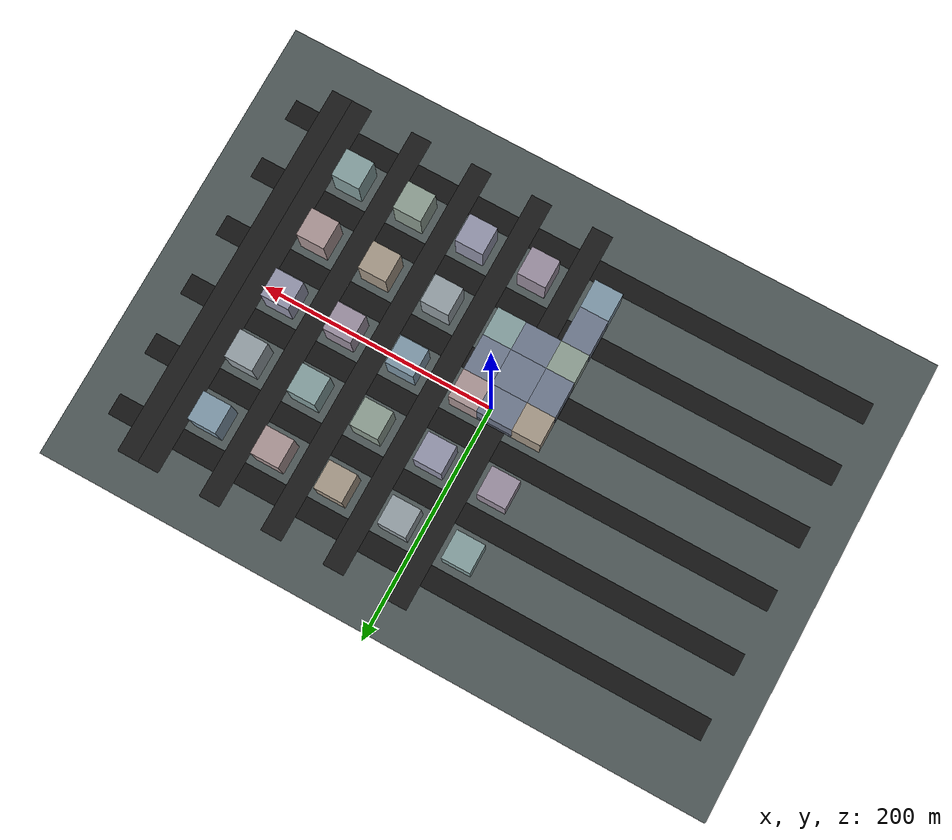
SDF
<sdf version="1.9">
 <world name="generated_city">
  <model name="ground">
   <static>true</static>
   <pose>0.000 0.000 -0.050 0 0 0</pose>
   <link name="link">
    <collision name="collision"><geometry><box><size>570.000 390.000 0.100</size></box></geometry></collision>
    <visual name="visual">
     <geometry><box><size>570.000 390.000 0.100</size></box></geometry>
     <material><diffuse>0.3 0.34 0.34 1.0</diffuse></material>
    </visual>
   </link>
  </model>
  <model name="street_01">
   <static>true</static>
   <pose>0.000 -135.000 0.040 0 0 0</pose>
   <link name="link">
    <visual name="visual">
     <geometry><box><size>510.000 18.000 0.040</size></box></geometry>
     <material><diffuse>0.08 0.08 0.08 1.0</diffuse></material>
    </visual>
   </link>
  </model>
  <model name="street_02">
   <static>true</static>
   <pose>0.000 -81.000 0.040 0 0 0</pose>
   <link name="link">
    <visual name="visual">
     <geometry><box><size>510.000 18.000 0.040</size></box></geometry>
     <material><diffuse>0.08 0.08 0.08 1.0</diffuse></material>
    </visual>
   </link>
  </model>
  <model name="street_03">
   <static>true</static>
   <pose>0.000 -27.000 0.040 0 0 0</pose>
   <link name="link">
    <visual name="visual">
     <geometry><box><size>510.000 18.000 0.040</size></box></geometry>
     <material><diffuse>0.08 0.08 0.08 1.0</diffuse></material>
    </visual>
   </link>
  </model>
  <model name="street_04">
   <static>true</static>
   <pose>0.000 27.000 0.040 0 0 0</pose>
   <link name="link">
    <visual name="visual">
     <geometry><box><size>510.000 18.000 0.040</size></box></geometry>
     <material><diffuse>0.08 0.08 0.08 1.0</diffuse></material>
    </visual>
   </link>
  </model>
  <model name="street_05">
   <static>true</static>
   <pose>0.000 81.000 0.040 0 0 0</pose>
   <link name="link">
    <visual name="visual">
     <geometry><box><size>510.000 18.000 0.040</size></box></geometry>
     <material><diffuse>0.08 0.08 0.08 1.0</diffuse></material>
    </visual>
   </link>
  </model>
  <model name="street_06">
   <static>true</static>
   <pose>0.000 135.000 0.040 0 0 0</pose>
   <link name="link">
    <visual name="visual">
     <geometry><box><size>510.000 18.000 0.040</size></box></geometry>
     <material><diffuse>0.08 0.08 0.08 1.0</diffuse></material>
    </visual>
   </link>
  </model>
  <model name="avenue_05">
   <static>true</static>
   <pose>-9.000 0.000 0.050 0 0 0</pose>
   <link name="link">
    <visual name="visual">
     <geometry><box><size>18.000 330.000 0.040</size></box></geometry>
     <material><diffuse>0.1 0.1 0.1 1.0</diffuse></material>
    </visual>
   </link>
  </model>
  <model name="avenue_06">
   <static>true</static>
   <pose>45.000 0.000 0.050 0 0 0</pose>
   <link name="link">
    <visual name="visual">
     <geometry><box><size>18.000 330.000 0.040</size></box></geometry>
     <material><diffuse>0.1 0.1 0.1 1.0</diffuse></material>
    </visual>
   </link>
  </model>
  <model name="avenue_07">
   <static>true</static>
   <pose>99.000 0.000 0.050 0 0 0</pose>
   <link name="link">
    <visual name="visual">
     <geometry><box><size>18.000 330.000 0.040</size></box></geometry>
     <material><diffuse>0.1 0.1 0.1 1.0</diffuse></material>
    </visual>
   </link>
  </model>
  <model name="avenue_08">
   <static>true</static>
   <pose>153.000 0.000 0.050 0 0 0</pose>
   <link name="link">
    <visual name="visual">
     <geometry><box><size>18.000 330.000 0.040</size></box></geometry>
     <material><diffuse>0.1 0.1 0.1 1.0</diffuse></material>
    </visual>
   </link>
  </model>
  <model name="avenue_09">
   <static>true</static>
   <pose>207.000 0.000 0.050 0 0 0</pose>
   <link name="link">
    <visual name="visual">
     <geometry><box><size>18.000 330.000 0.040</size></box></geometry>
     <material><diffuse>0.1 0.1 0.1 1.0</diffuse></material>
    </visual>
   </link>
  </model>
  <model name="avenue_10">
   <static>true</static>
   <pose>225.000 0.000 0.050 0 0 0</pose>
   <link name="link">
    <visual name="visual">
     <geometry><box><size>18.000 330.000 0.040</size></box></geometry>
     <material><diffuse>0.1 0.1 0.1 1.0</diffuse></material>
    </visual>
   </link>
  </model>
  <model name="building_004">
   <static>true</static>
   <pose>-36.000 -108.000 16.000 0 0 0</pose>
   <link name="link">
    <collision name="collision"><geometry><box><size>24.000 24.000 32.000</size></box></geometry></collision>
    <visual name="visual">
     <geometry><box><size>24.000 24.000 32.000</size></box></geometry>
     <material><diffuse>0.49411764705882355 0.592156862745098 0.6588235294117647 1.0</diffuse></material>
    </visual>
   </link>
  </model>
  <model name="building_005">
   <static>true</static>
   <pose>18.000 -108.000 16.000 0 0 0</pose>
   <link name="link">
    <collision name="collision"><geometry><box><size>24.000 24.000 32.000</size></box></geometry></collision>
    <visual name="visual">
     <geometry><box><size>24.000 24.000 32.000</size></box></geometry>
     <material><diffuse>0.6039215686274509 0.5568627450980392 0.6235294117647059 1.0</diffuse></material>
    </visual>
   </link>
  </model>
  <model name="building_006">
   <static>true</static>
   <pose>72.000 -108.000 16.000 0 0 0</pose>
   <link name="link">
    <collision name="collision"><geometry><box><size>24.000 24.000 32.000</size></box></geometry></collision>
    <visual name="visual">
     <geometry><box><size>24.000 24.000 32.000</size></box></geometry>
     <material><diffuse>0.5725490196078431 0.5803921568627451 0.6666666666666666 1.0</diffuse></material>
    </visual>
   </link>
  </model>
  <model name="building_007">
   <static>true</static>
   <pose>126.000 -108.000 16.000 0 0 0</pose>
   <link name="link">
    <collision name="collision"><geometry><box><size>24.000 24.000 32.000</size></box></geometry></collision>
    <visual name="visual">
     <geometry><box><size>24.000 24.000 32.000</size></box></geometry>
     <material><diffuse>0.5490196078431373 0.615686274509804 0.5686274509803921 1.0</diffuse></material>
    </visual>
   </link>
  </model>
  <model name="building_008">
   <static>true</static>
   <pose>180.000 -108.000 16.000 0 0 0</pose>
   <link name="link">
    <collision name="collision"><geometry><box><size>24.000 24.000 32.000</size></box></geometry></collision>
    <visual name="visual">
     <geometry><box><size>24.000 24.000 32.000</size></box></geometry>
     <material><diffuse>0.5176470588235295 0.6196078431372549 0.6196078431372549 1.0</diffuse></material>
    </visual>
   </link>
  </model>
  <model name="building_012">
   <static>true</static>
   <pose>-36.000 -54.000 16.000 0 0 0</pose>
   <link name="link">
    <collision name="collision"><geometry><box><size>24.000 24.000 32.000</size></box></geometry></collision>
    <visual name="visual">
     <geometry><box><size>24.000 24.000 32.000</size></box></geometry>
     <material><diffuse>0.5490196078431373 0.615686274509804 0.5686274509803921 1.0</diffuse></material>
    </visual>
   </link>
  </model>
  <model name="building_013">
   <static>true</static>
   <pose>18.000 -54.000 16.000 0 0 0</pose>
   <link name="link">
    <collision name="collision"><geometry><box><size>24.000 24.000 32.000</size></box></geometry></collision>
    <visual name="visual">
     <geometry><box><size>24.000 24.000 32.000</size></box></geometry>
     <material><diffuse>0.5176470588235295 0.6196078431372549 0.6196078431372549 1.0</diffuse></material>
    </visual>
   </link>
  </model>
  <model name="building_014">
   <static>true</static>
   <pose>72.000 -54.000 16.000 0 0 0</pose>
   <link name="link">
    <collision name="collision"><geometry><box><size>24.000 24.000 32.000</size></box></geometry></collision>
    <visual name="visual">
     <geometry><box><size>24.000 24.000 32.000</size></box></geometry>
     <material><diffuse>0.5803921568627451 0.6196078431372549 0.6431372549019608 1.0</diffuse></material>
    </visual>
   </link>
  </model>
  <model name="building_015">
   <static>true</static>
   <pose>126.000 -54.000 16.000 0 0 0</pose>
   <link name="link">
    <collision name="collision"><geometry><box><size>24.000 24.000 32.000</size></box></geometry></collision>
    <visual name="visual">
     <geometry><box><size>24.000 24.000 32.000</size></box></geometry>
     <material><diffuse>0.6431372549019608 0.592156862745098 0.5254901960784314 1.0</diffuse></material>
    </visual>
   </link>
  </model>
  <model name="building_016">
   <static>true</static>
   <pose>180.000 -54.000 16.000 0 0 0</pose>
   <link name="link">
    <collision name="collision"><geometry><box><size>24.000 24.000 32.000</size></box></geometry></collision>
    <visual name="visual">
     <geometry><box><size>24.000 24.000 32.000</size></box></geometry>
     <material><diffuse>0.6627450980392157 0.5803921568627451 0.5803921568627451 1.0</diffuse></material>
    </visual>
   </link>
  </model>
  <model name="building_020">
   <static>true</static>
   <pose>-36.000 0.000 16.000 0 0 0</pose>
   <link name="link">
    <collision name="collision"><geometry><box><size>24.000 24.000 32.000</size></box></geometry></collision>
    <visual name="visual">
     <geometry><box><size>24.000 24.000 32.000</size></box></geometry>
     <material><diffuse>0.6431372549019608 0.592156862745098 0.5254901960784314 1.0</diffuse></material>
    </visual>
   </link>
  </model>
  <model name="building_021">
   <static>true</static>
   <pose>18.000 0.000 16.000 0 0 0</pose>
   <link name="link">
    <collision name="collision"><geometry><box><size>24.000 24.000 32.000</size></box></geometry></collision>
    <visual name="visual">
     <geometry><box><size>24.000 24.000 32.000</size></box></geometry>
     <material><diffuse>0.6627450980392157 0.5803921568627451 0.5803921568627451 1.0</diffuse></material>
    </visual>
   </link>
  </model>
  <model name="building_022">
   <static>true</static>
   <pose>72.000 0.000 16.000 0 0 0</pose>
   <link name="link">
    <collision name="collision"><geometry><box><size>24.000 24.000 32.000</size></box></geometry></collision>
    <visual name="visual">
     <geometry><box><size>24.000 24.000 32.000</size></box></geometry>
     <material><diffuse>0.49411764705882355 0.592156862745098 0.6588235294117647 1.0</diffuse></material>
    </visual>
   </link>
  </model>
  <model name="building_023">
   <static>true</static>
   <pose>126.000 0.000 16.000 0 0 0</pose>
   <link name="link">
    <collision name="collision"><geometry><box><size>24.000 24.000 32.000</size></box></geometry></collision>
    <visual name="visual">
     <geometry><box><size>24.000 24.000 32.000</size></box></geometry>
     <material><diffuse>0.6039215686274509 0.5568627450980392 0.6235294117647059 1.0</diffuse></material>
    </visual>
   </link>
  </model>
  <model name="building_024">
   <static>true</static>
   <pose>180.000 0.000 16.000 0 0 0</pose>
   <link name="link">
    <collision name="collision"><geometry><box><size>24.000 24.000 32.000</size></box></geometry></collision>
    <visual name="visual">
     <geometry><box><size>24.000 24.000 32.000</size></box></geometry>
     <material><diffuse>0.5725490196078431 0.5803921568627451 0.6666666666666666 1.0</diffuse></material>
    </visual>
   </link>
  </model>
  <model name="building_028">
   <static>true</static>
   <pose>-36.000 54.000 16.000 0 0 0</pose>
   <link name="link">
    <collision name="collision"><geometry><box><size>24.000 24.000 32.000</size></box></geometry></collision>
    <visual name="visual">
     <geometry><box><size>24.000 24.000 32.000</size></box></geometry>
     <material><diffuse>0.6039215686274509 0.5568627450980392 0.6235294117647059 1.0</diffuse></material>
    </visual>
   </link>
  </model>
  <model name="building_029">
   <static>true</static>
   <pose>18.000 54.000 16.000 0 0 0</pose>
   <link name="link">
    <collision name="collision"><geometry><box><size>24.000 24.000 32.000</size></box></geometry></collision>
    <visual name="visual">
     <geometry><box><size>24.000 24.000 32.000</size></box></geometry>
     <material><diffuse>0.5725490196078431 0.5803921568627451 0.6666666666666666 1.0</diffuse></material>
    </visual>
   </link>
  </model>
  <model name="building_030">
   <static>true</static>
   <pose>72.000 54.000 16.000 0 0 0</pose>
   <link name="link">
    <collision name="collision"><geometry><box><size>24.000 24.000 32.000</size></box></geometry></collision>
    <visual name="visual">
     <geometry><box><size>24.000 24.000 32.000</size></box></geometry>
     <material><diffuse>0.5490196078431373 0.615686274509804 0.5686274509803921 1.0</diffuse></material>
    </visual>
   </link>
  </model>
  <model name="building_031">
   <static>true</static>
   <pose>126.000 54.000 16.000 0 0 0</pose>
   <link name="link">
    <collision name="collision"><geometry><box><size>24.000 24.000 32.000</size></box></geometry></collision>
    <visual name="visual">
     <geometry><box><size>24.000 24.000 32.000</size></box></geometry>
     <material><diffuse>0.5176470588235295 0.6196078431372549 0.6196078431372549 1.0</diffuse></material>
    </visual>
   </link>
  </model>
  <model name="building_032">
   <static>true</static>
   <pose>180.000 54.000 16.000 0 0 0</pose>
   <link name="link">
    <collision name="collision"><geometry><box><size>24.000 24.000 32.000</size></box></geometry></collision>
    <visual name="visual">
     <geometry><box><size>24.000 24.000 32.000</size></box></geometry>
     <material><diffuse>0.5803921568627451 0.6196078431372549 0.6431372549019608 1.0</diffuse></material>
    </visual>
   </link>
  </model>
  <model name="building_036">
   <static>true</static>
   <pose>-36.000 108.000 16.000 0 0 0</pose>
   <link name="link">
    <collision name="collision"><geometry><box><size>24.000 24.000 32.000</size></box></geometry></collision>
    <visual name="visual">
     <geometry><box><size>24.000 24.000 32.000</size></box></geometry>
     <material><diffuse>0.5176470588235295 0.6196078431372549 0.6196078431372549 1.0</diffuse></material>
    </visual>
   </link>
  </model>
  <model name="building_037">
   <static>true</static>
   <pose>18.000 108.000 16.000 0 0 0</pose>
   <link name="link">
    <collision name="collision"><geometry><box><size>24.000 24.000 32.000</size></box></geometry></collision>
    <visual name="visual">
     <geometry><box><size>24.000 24.000 32.000</size></box></geometry>
     <material><diffuse>0.5803921568627451 0.6196078431372549 0.6431372549019608 1.0</diffuse></material>
    </visual>
   </link>
  </model>
  <model name="building_038">
   <static>true</static>
   <pose>72.000 108.000 16.000 0 0 0</pose>
   <link name="link">
    <collision name="collision"><geometry><box><size>24.000 24.000 32.000</size></box></geometry></collision>
    <visual name="visual">
     <geometry><box><size>24.000 24.000 32.000</size></box></geometry>
     <material><diffuse>0.6431372549019608 0.592156862745098 0.5254901960784314 1.0</diffuse></material>
    </visual>
   </link>
  </model>
  <model name="building_039">
   <static>true</static>
   <pose>126.000 108.000 16.000 0 0 0</pose>
   <link name="link">
    <collision name="collision"><geometry><box><size>24.000 24.000 32.000</size></box></geometry></collision>
    <visual name="visual">
     <geometry><box><size>24.000 24.000 32.000</size></box></geometry>
     <material><diffuse>0.6627450980392157 0.5803921568627451 0.5803921568627451 1.0</diffuse></material>
    </visual>
   </link>
  </model>
  <model name="building_040">
   <static>true</static>
   <pose>180.000 108.000 16.000 0 0 0</pose>
   <link name="link">
    <collision name="collision"><geometry><box><size>24.000 24.000 32.000</size></box></geometry></collision>
    <visual name="visual">
     <geometry><box><size>24.000 24.000 32.000</size></box></geometry>
     <material><diffuse>0.49411764705882355 0.592156862745098 0.6588235294117647 1.0</diffuse></material>
    </visual>
   </link>
  </model>
  <model name="passage_structure_11_19_l_north_lower">
   <static>true</static>
   <pose>-36.000 -27.000 0.750 0 0 0</pose>
   <link name="link">
    <collision name="collision"><geometry><box><size>24.000 30.000 1.500</size></box></geometry></collision>
    <visual name="visual">
     <visibility_flags>134217728</visibility_flags>
     <geometry><box><size>24.000 30.000 1.500</size></box></geometry>
     <material><diffuse>0.43 0.47 0.55 1.0</diffuse></material>
    </visual>
   </link>
  </model>
  <model name="passage_structure_11_19_l_north_upper">
   <static>true</static>
   <pose>-36.000 -27.000 20.250 0 0 0</pose>
   <link name="link">
    <collision name="collision"><geometry><box><size>24.000 30.000 23.500</size></box></geometry></collision>
    <visual name="visual">
     <visibility_flags>134217728</visibility_flags>
     <geometry><box><size>24.000 30.000 23.500</size></box></geometry>
     <material><diffuse>0.43 0.47 0.55 1.0</diffuse></material>
    </visual>
   </link>
  </model>
  <model name="passage_structure_11_19_l_north_middle">
   <static>true</static>
   <pose>-36.000 -27.000 5.000 0 0 0</pose>
   <link name="link">
    <collision name="collision"><geometry><box><size>24.000 30.000 7.000</size></box></geometry></collision>
    <visual name="visual">
     <visibility_flags>134217728</visibility_flags>
     <geometry><box><size>24.000 30.000 7.000</size></box></geometry>
     <material><diffuse>0.43 0.47 0.55 1.0</diffuse></material>
    </visual>
   </link>
  </model>
  <model name="passage_structure_54_162_straight_north_lower">
   <static>true</static>
   <pose>-36.000 -81.000 0.750 0 0 0</pose>
   <link name="link">
    <collision name="collision"><geometry><box><size>24.000 30.000 1.500</size></box></geometry></collision>
    <visual name="visual">
     <visibility_flags>134217728</visibility_flags>
     <geometry><box><size>24.000 30.000 1.500</size></box></geometry>
     <material><diffuse>0.43 0.47 0.55 1.0</diffuse></material>
    </visual>
   </link>
  </model>
  <model name="passage_structure_54_162_straight_north_upper">
   <static>true</static>
   <pose>-36.000 -81.000 20.250 0 0 0</pose>
   <link name="link">
    <collision name="collision"><geometry><box><size>24.000 30.000 23.500</size></box></geometry></collision>
    <visual name="visual">
     <visibility_flags>134217728</visibility_flags>
     <geometry><box><size>24.000 30.000 23.500</size></box></geometry>
     <material><diffuse>0.43 0.47 0.55 1.0</diffuse></material>
    </visual>
   </link>
  </model>
  <model name="passage_structure_108_216_l_intersection_lower">
   <static>true</static>
   <pose>-9.000 -27.000 0.750 0 0 0</pose>
   <link name="link">
    <collision name="collision"><geometry><box><size>30.000 30.000 1.500</size></box></geometry></collision>
    <visual name="visual">
     <visibility_flags>134217728</visibility_flags>
     <geometry><box><size>30.000 30.000 1.500</size></box></geometry>
     <material><diffuse>0.43 0.47 0.55 1.0</diffuse></material>
    </visual>
   </link>
  </model>
  <model name="passage_structure_108_216_l_intersection_upper">
   <static>true</static>
   <pose>-9.000 -27.000 20.250 0 0 0</pose>
   <link name="link">
    <collision name="collision"><geometry><box><size>30.000 30.000 23.500</size></box></geometry></collision>
    <visual name="visual">
     <visibility_flags>134217728</visibility_flags>
     <geometry><box><size>30.000 30.000 23.500</size></box></geometry>
     <material><diffuse>0.43 0.47 0.55 1.0</diffuse></material>
    </visual>
   </link>
  </model>
  <model name="passage_structure_108_216_l_west_lower">
   <static>true</static>
   <pose>-9.000 -54.000 0.750 0 0 0</pose>
   <link name="link">
    <collision name="collision"><geometry><box><size>30.000 24.000 1.500</size></box></geometry></collision>
    <visual name="visual">
     <visibility_flags>134217728</visibility_flags>
     <geometry><box><size>30.000 24.000 1.500</size></box></geometry>
     <material><diffuse>0.43 0.47 0.55 1.0</diffuse></material>
    </visual>
   </link>
  </model>
  <model name="passage_structure_108_216_l_west_upper">
   <static>true</static>
   <pose>-9.000 -54.000 20.250 0 0 0</pose>
   <link name="link">
    <collision name="collision"><geometry><box><size>30.000 24.000 23.500</size></box></geometry></collision>
    <visual name="visual">
     <visibility_flags>134217728</visibility_flags>
     <geometry><box><size>30.000 24.000 23.500</size></box></geometry>
     <material><diffuse>0.43 0.47 0.55 1.0</diffuse></material>
    </visual>
   </link>
  </model>
  <model name="passage_structure_108_216_l_east_lower">
   <static>true</static>
   <pose>-9.000 0.000 0.750 0 0 0</pose>
   <link name="link">
    <collision name="collision"><geometry><box><size>30.000 24.000 1.500</size></box></geometry></collision>
    <visual name="visual">
     <visibility_flags>134217728</visibility_flags>
     <geometry><box><size>30.000 24.000 1.500</size></box></geometry>
     <material><diffuse>0.43 0.47 0.55 1.0</diffuse></material>
    </visual>
   </link>
  </model>
  <model name="passage_structure_108_216_l_east_upper">
   <static>true</static>
   <pose>-9.000 0.000 20.250 0 0 0</pose>
   <link name="link">
    <collision name="collision"><geometry><box><size>30.000 24.000 23.500</size></box></geometry></collision>
    <visual name="visual">
     <visibility_flags>134217728</visibility_flags>
     <geometry><box><size>30.000 24.000 23.500</size></box></geometry>
     <material><diffuse>0.43 0.47 0.55 1.0</diffuse></material>
    </visual>
   </link>
  </model>
  <model name="passage_structure_108_216_l_east_middle">
   <static>true</static>
   <pose>-9.000 0.000 5.000 0 0 0</pose>
   <link name="link">
    <collision name="collision"><geometry><box><size>30.000 24.000 7.000</size></box></geometry></collision>
    <visual name="visual">
     <visibility_flags>134217728</visibility_flags>
     <geometry><box><size>30.000 24.000 7.000</size></box></geometry>
     <material><diffuse>0.43 0.47 0.55 1.0</diffuse></material>
    </visual>
   </link>
  </model>
  <model name="passage_structure_108_216_l_north_lower">
   <static>true</static>
   <pose>18.000 -27.000 0.750 0 0 0</pose>
   <link name="link">
    <collision name="collision"><geometry><box><size>24.000 30.000 1.500</size></box></geometry></collision>
    <visual name="visual">
     <visibility_flags>134217728</visibility_flags>
     <geometry><box><size>24.000 30.000 1.500</size></box></geometry>
     <material><diffuse>0.43 0.47 0.55 1.0</diffuse></material>
    </visual>
   </link>
  </model>
  <model name="passage_structure_108_216_l_north_upper">
   <static>true</static>
   <pose>18.000 -27.000 20.250 0 0 0</pose>
   <link name="link">
    <collision name="collision"><geometry><box><size>24.000 30.000 23.500</size></box></geometry></collision>
    <visual name="visual">
     <visibility_flags>134217728</visibility_flags>
     <geometry><box><size>24.000 30.000 23.500</size></box></geometry>
     <material><diffuse>0.43 0.47 0.55 1.0</diffuse></material>
    </visual>
   </link>
  </model>
  <model name="passage_structure_54_162_straight_intersection_no_static_occluder">
   <static>true</static>
   <pose>-63.000 -81.000 5.000 0 0 0</pose>
   <link name="no_static_lidar_occluder">
    <visual name="visual">
     <cast_shadows>false</cast_shadows>
     <transparency>0.999</transparency>
     <visibility_flags>67108864</visibility_flags>
     <geometry><box><size>30.000 30.000 7.000</size></box></geometry>
    </visual>
   </link>
  </model>
  <model name="passage_structure_54_162_straight_north_no_static_occluder">
   <static>true</static>
   <pose>-36.000 -81.000 5.000 0 0 0</pose>
   <link name="no_static_lidar_occluder">
    <visual name="visual">
     <cast_shadows>false</cast_shadows>
     <transparency>0.999</transparency>
     <visibility_flags>67108864</visibility_flags>
     <geometry><box><size>24.000 30.000 7.000</size></box></geometry>
    </visual>
   </link>
  </model>
  <model name="passage_structure_108_216_l_intersection_no_static_occluder">
   <static>true</static>
   <pose>-9.000 -27.000 5.000 0 0 0</pose>
   <link name="no_static_lidar_occluder">
    <visual name="visual">
     <cast_shadows>false</cast_shadows>
     <transparency>0.999</transparency>
     <visibility_flags>67108864</visibility_flags>
     <geometry><box><size>30.000 30.000 7.000</size></box></geometry>
    </visual>
   </link>
  </model>
  <model name="passage_structure_108_216_l_west_no_static_occluder">
   <static>true</static>
   <pose>-9.000 -54.000 5.000 0 0 0</pose>
   <link name="no_static_lidar_occluder">
    <visual name="visual">
     <cast_shadows>false</cast_shadows>
     <transparency>0.999</transparency>
     <visibility_flags>67108864</visibility_flags>
     <geometry><box><size>30.000 24.000 7.000</size></box></geometry>
    </visual>
   </link>
  </model>
  <model name="passage_structure_108_216_l_north_no_static_occluder">
   <static>true</static>
   <pose>18.000 -27.000 5.000 0 0 0</pose>
   <link name="no_static_lidar_occluder">
    <visual name="visual">
     <cast_shadows>false</cast_shadows>
     <transparency>0.999</transparency>
     <visibility_flags>67108864</visibility_flags>
     <geometry><box><size>24.000 30.000 7.000</size></box></geometry>
    </visual>
   </link>
  </model>
 </world>
</sdf>
